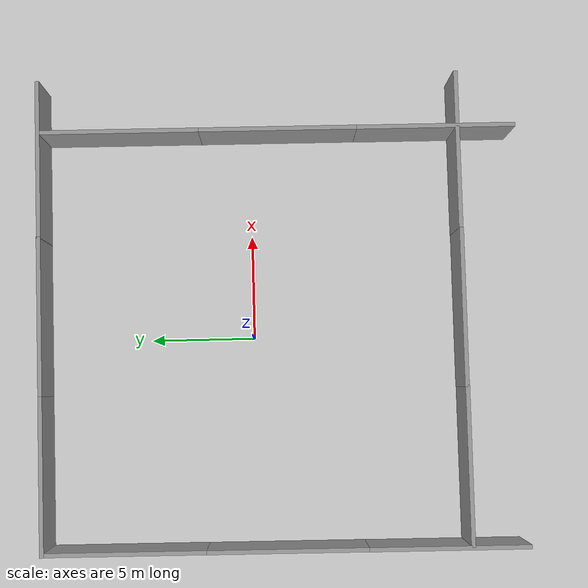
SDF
<sdf version="1.6">
 <world name="default">
  <light name="sun" type="directional">
   <pose>0 0 10 0 -0 0</pose>
   <diffuse>0.8 0.8 0.8 1</diffuse>
   <specular>0.1 0.1 0.1 1</specular>
   <attenuation>
    <range>1000</range>
    <constant>0.9</constant>
    <linear>0.01</linear>
    <quadratic>0.001</quadratic>
   </attenuation>
   <direction>-0.5 0.5 -1</direction>
  </light>
  <model name="ground_plane">
   <static>1</static>
   <link name="link">
    <collision name="collision">
     <geometry><plane><normal>0 0 1</normal><size>100 100</size></plane></geometry>
     <surface><friction><ode><mu>100</mu><mu2>50</mu2></ode></friction></surface>
    </collision>
    <visual name="visual">
     <cast_shadows>0</cast_shadows>
     <geometry><plane><normal>0 0 1</normal><size>100 100</size></plane></geometry>
     <material>
      <script><uri>file://media/materials/scripts/gazebo.material</uri><name>Gazebo/Grey</name></script>
     </material>
    </visual>
   </link>
  </model>
  <gravity>0 0 -9.8</gravity>
  <magnetic_field>6e-06 2.3e-05 -4.2e-05</magnetic_field>
  <atmosphere type="adiabatic"/>
  <physics name="default_physics" default="0" type="ode">
   <max_step_size>0.001</max_step_size>
   <real_time_factor>1</real_time_factor>
   <real_time_update_rate>1000</real_time_update_rate>
  </physics>
  <scene><ambient>0.4 0.4 0.4 1</ambient><background>0.7 0.7 0.7 1</background><shadows>1</shadows></scene>
  <spherical_coordinates>
   <surface_model>EARTH_WGS84</surface_model>
   <latitude_deg>0</latitude_deg>
   <longitude_deg>0</longitude_deg>
   <elevation>0</elevation>
   <heading_deg>0</heading_deg>
  </spherical_coordinates>
  <model name="grey_wall">
   <static>1</static>
   <link name="link">
    <pose>0 0 1.4 0 -0 0</pose>
    <collision name="collision"><geometry><box><size>7.5 0.2 2.8</size></box></geometry></collision>
    <visual name="visual">
     <cast_shadows>0</cast_shadows>
     <geometry><box><size>7.5 0.2 2.8</size></box></geometry>
     <material>
      <script>
       <uri>model://grey_wall/materials/scripts</uri>
       <uri>model://grey_wall/materials/textures</uri>
       <name>vrc/grey_wall</name>
      </script>
     </material>
    </visual>
   </link>
   <pose>-6.23529 10.0073 0 0 -0 0</pose>
  </model>
  <model name="grey_wall_0">
   <static>1</static>
   <link name="link">
    <pose>0 0 1.4 0 -0 0</pose>
    <collision name="collision"><geometry><box><size>7.5 0.2 2.8</size></box></geometry></collision>
    <visual name="visual">
     <cast_shadows>0</cast_shadows>
     <geometry><box><size>7.5 0.2 2.8</size></box></geometry>
     <material>
      <script>
       <uri>model://grey_wall/materials/scripts</uri>
       <uri>model://grey_wall/materials/textures</uri>
       <name>vrc/grey_wall</name>
      </script>
     </material>
    </visual>
   </link>
   <pose>1.17917 10.0046 0 0 -0 0</pose>
  </model>
  <model name="grey_wall_1">
   <static>1</static>
   <link name="link">
    <pose>0 0 1.4 0 -0 0</pose>
    <collision name="collision"><geometry><box><size>7.5 0.2 2.8</size></box></geometry></collision>
    <visual name="visual">
     <cast_shadows>0</cast_shadows>
     <geometry><box><size>7.5 0.2 2.8</size></box></geometry>
     <material>
      <script>
       <uri>model://grey_wall/materials/scripts</uri>
       <uri>model://grey_wall/materials/textures</uri>
       <name>vrc/grey_wall</name>
      </script>
     </material>
    </visual>
   </link>
   <pose>8.59377 9.98823 0 0 -0 0</pose>
  </model>
  <model name="grey_wall_2">
   <static>1</static>
   <link name="link">
    <pose>0 0 1.4 0 -0 0</pose>
    <collision name="collision"><geometry><box><size>7.5 0.2 2.8</size></box></geometry></collision>
    <visual name="visual">
     <cast_shadows>0</cast_shadows>
     <geometry><box><size>7.5 0.2 2.8</size></box></geometry>
     <material>
      <script>
       <uri>model://grey_wall/materials/scripts</uri>
       <uri>model://grey_wall/materials/textures</uri>
       <name>vrc/grey_wall</name>
      </script>
     </material>
    </visual>
   </link>
   <pose>-6.26258 -9.90234 0 0 -0 0</pose>
  </model>
  <model name="grey_wall_3">
   <static>1</static>
   <link name="link">
    <pose>0 0 1.4 0 -0 0</pose>
    <collision name="collision"><geometry><box><size>7.5 0.2 2.8</size></box></geometry></collision>
    <visual name="visual">
     <cast_shadows>0</cast_shadows>
     <geometry><box><size>7.5 0.2 2.8</size></box></geometry>
     <material>
      <script>
       <uri>model://grey_wall/materials/scripts</uri>
       <uri>model://grey_wall/materials/textures</uri>
       <name>vrc/grey_wall</name>
      </script>
     </material>
    </visual>
   </link>
   <pose>1.13567 -9.88945 0 0 -0 0</pose>
  </model>
  <model name="grey_wall_4">
   <static>1</static>
   <link name="link">
    <pose>0 0 1.4 0 -0 0</pose>
    <collision name="collision"><geometry><box><size>7.5 0.2 2.8</size></box></geometry></collision>
    <visual name="visual">
     <cast_shadows>0</cast_shadows>
     <geometry><box><size>7.5 0.2 2.8</size></box></geometry>
     <material>
      <script>
       <uri>model://grey_wall/materials/scripts</uri>
       <uri>model://grey_wall/materials/textures</uri>
       <name>vrc/grey_wall</name>
      </script>
     </material>
    </visual>
   </link>
   <pose>8.60576 -9.87213 0 0 -0 0</pose>
  </model>
  <model name="grey_wall_5">
   <static>1</static>
   <link name="link">
    <pose>0 0 1.4 0 -0 0</pose>
    <collision name="collision"><geometry><box><size>7.5 0.2 2.8</size></box></geometry></collision>
    <visual name="visual">
     <cast_shadows>0</cast_shadows>
     <geometry><box><size>7.5 0.2 2.8</size></box></geometry>
     <material>
      <script>
       <uri>model://grey_wall/materials/scripts</uri>
       <uri>model://grey_wall/materials/textures</uri>
       <name>vrc/grey_wall</name>
      </script>
     </material>
    </visual>
   </link>
   <pose>-9.90138 6.14756 0 0 -0 1.56377</pose>
  </model>
  <model name="grey_wall_5_clone">
   <static>1</static>
   <link name="link">
    <pose>0 0 1.4 0 -0 0</pose>
    <collision name="collision"><geometry><box><size>7.5 0.2 2.8</size></box></geometry></collision>
    <visual name="visual">
     <cast_shadows>0</cast_shadows>
     <geometry><box><size>7.5 0.2 2.8</size></box></geometry>
     <material>
      <script>
       <uri>model://grey_wall/materials/scripts</uri>
       <uri>model://grey_wall/materials/textures</uri>
       <name>vrc/grey_wall</name>
      </script>
     </material>
    </visual>
   </link>
   <pose>-9.95994 -1.35198 0 0 -0 1.56377</pose>
  </model>
  <model name="grey_wall_5_clone_0">
   <static>1</static>
   <link name="link">
    <pose>0 0 1.4 0 -0 0</pose>
    <collision name="collision"><geometry><box><size>7.5 0.2 2.8</size></box></geometry></collision>
    <visual name="visual">
     <cast_shadows>0</cast_shadows>
     <geometry><box><size>7.5 0.2 2.8</size></box></geometry>
     <material>
      <script>
       <uri>model://grey_wall/materials/scripts</uri>
       <uri>model://grey_wall/materials/textures</uri>
       <name>vrc/grey_wall</name>
      </script>
     </material>
    </visual>
   </link>
   <pose>-10.0185 -8.85232 0 0 -0 1.56377</pose>
  </model>
  <model name="grey_wall_5_clone_1">
   <static>1</static>
   <link name="link">
    <pose>0 0 1.4 0 -0 0</pose>
    <collision name="collision"><geometry><box><size>7.5 0.2 2.8</size></box></geometry></collision>
    <visual name="visual">
     <cast_shadows>0</cast_shadows>
     <geometry><box><size>7.5 0.2 2.8</size></box></geometry>
     <material>
      <script>
       <uri>model://grey_wall/materials/scripts</uri>
       <uri>model://grey_wall/materials/textures</uri>
       <name>vrc/grey_wall</name>
      </script>
     </material>
    </visual>
   </link>
   <pose>9.84772 6.13697 0 0 -0 1.56377</pose>
  </model>
  <model name="grey_wall_5_clone_2">
   <static>1</static>
   <link name="link">
    <pose>0 0 1.4 0 -0 0</pose>
    <collision name="collision"><geometry><box><size>7.5 0.2 2.8</size></box></geometry></collision>
    <visual name="visual">
     <cast_shadows>0</cast_shadows>
     <geometry><box><size>7.5 0.2 2.8</size></box></geometry>
     <material>
      <script>
       <uri>model://grey_wall/materials/scripts</uri>
       <uri>model://grey_wall/materials/textures</uri>
       <name>vrc/grey_wall</name>
      </script>
     </material>
    </visual>
   </link>
   <pose>9.794 -1.36371 0 0 -0 1.56377</pose>
  </model>
  <model name="grey_wall_5_clone_3">
   <static>1</static>
   <link name="link">
    <pose>0 0 1.4 0 -0 0</pose>
    <collision name="collision"><geometry><box><size>7.5 0.2 2.8</size></box></geometry></collision>
    <visual name="visual">
     <cast_shadows>0</cast_shadows>
     <geometry><box><size>7.5 0.2 2.8</size></box></geometry>
     <material>
      <script>
       <uri>model://grey_wall/materials/scripts</uri>
       <uri>model://grey_wall/materials/textures</uri>
       <name>vrc/grey_wall</name>
      </script>
     </material>
    </visual>
   </link>
   <pose>9.73487 -8.85817 0 0 -0 1.56377</pose>
  </model>
 </world>
</sdf>
